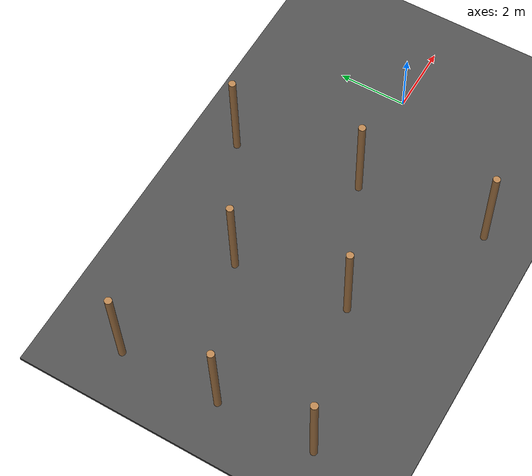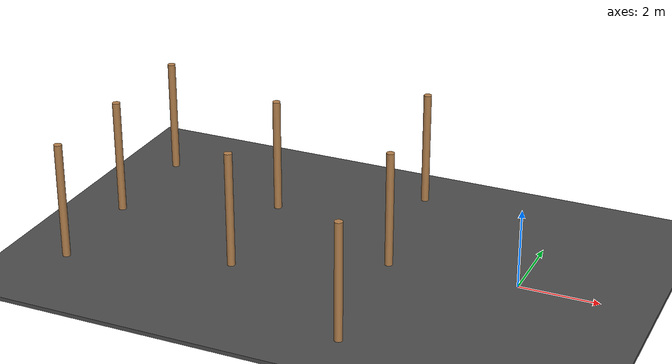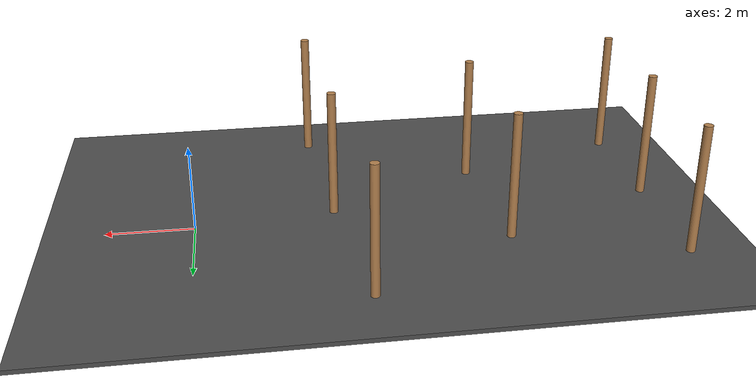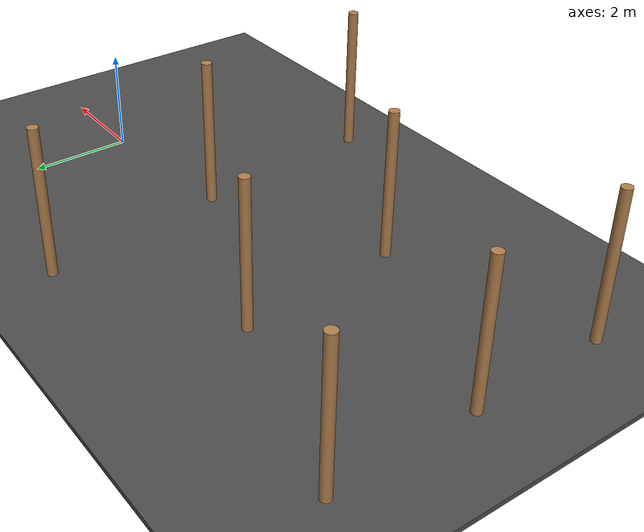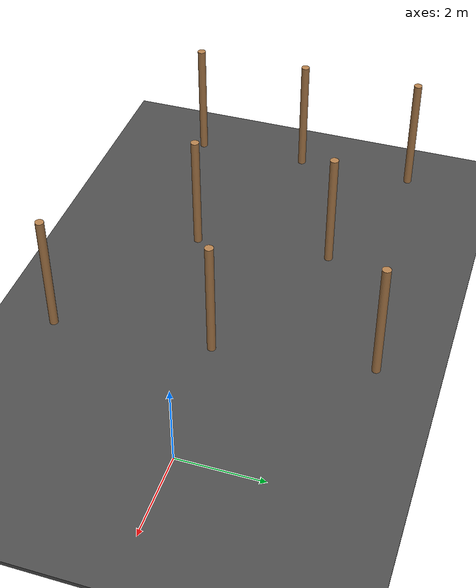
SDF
<sdf version="1.7">
 <world name="default">
  <model name="asphalt_plane">
   <pose>-0.054783 -0.070898 0 0 -0 0</pose>
   <static>1</static>
   <link name="link">
    <collision name="collision"><geometry><box><size>42.4866 44.6464 0.1</size></box></geometry></collision>
    <visual name="visual">
     <cast_shadows>0</cast_shadows>
     <geometry><box><size>42.4866 44.6464 0.1</size></box></geometry>
     <material>
      <script>
       <uri>model://asphalt_plane/materials/scripts</uri>
       <uri>model://asphalt_plane/materials/textures</uri>
       <name>vrc/asphalt</name>
      </script>
     </material>
    </visual>
   </link>
  </model>
  <model name="wooden_cylinder1_clone_1">
   <pose>-10.642 2.62246 -6e-05 0 -0 0</pose>
   <link name="wooden_cylinder::link_0">
    <pose>0 0 1.5 0 -0 0</pose>
    <inertial>
     <mass>1</mass>
     <inertia><ixx>0.145833</ixx><ixy>0</ixy><ixz>0</ixz><iyy>0.145833</iyy><iyz>0</iyz><izz>0.125</izz></inertia>
    </inertial>
    <visual name="visual">
     <geometry><cylinder><radius>0.1</radius><length>3</length></cylinder></geometry>
     <material>
      <lighting>1</lighting>
      <script><uri>file://media/materials/scripts/gazebo.material</uri><name>Gazebo/Wood</name></script>
      <ambient>0.3 0.3 0.3 1</ambient>
      <diffuse>0.7 0.7 0.7 1</diffuse>
      <specular>0.01 0.01 0.01 1</specular>
      <emissive>0 0 0 1</emissive>
      <shader type="vertex"><normal_map>__default__</normal_map></shader>
     </material>
    </visual>
    <collision name="collision">
     <geometry><cylinder><radius>0.1</radius><length>3</length></cylinder></geometry>
     <surface>
      <friction>
       <ode><mu>1</mu><mu2>1</mu2><fdir1>0 0 0</fdir1><slip1>0</slip1><slip2>0</slip2></ode>
       <torsional>
        <coefficient>1</coefficient>
        <patch_radius>0</patch_radius>
        <surface_radius>0</surface_radius>
        <use_patch_radius>1</use_patch_radius>
        <ode><slip>0</slip></ode>
       </torsional>
      </friction>
      <bounce><restitution_coefficient>0</restitution_coefficient><threshold>1e+06</threshold></bounce>
      <contact>
       <collide_without_contact>0</collide_without_contact>
       <collide_without_contact_bitmask>1</collide_without_contact_bitmask>
       <collide_bitmask>1</collide_bitmask>
       <ode>
        <soft_cfm>0</soft_cfm>
        <soft_erp>0.2</soft_erp>
        <kp>1e+13</kp>
        <kd>1</kd>
        <max_vel>0.01</max_vel>
        <min_depth>0</min_depth>
       </ode>
       <bullet>
        <split_impulse>1</split_impulse>
        <split_impulse_penetration_threshold>-0.01</split_impulse_penetration_threshold>
        <soft_cfm>0</soft_cfm>
        <soft_erp>0.2</soft_erp>
        <kp>1e+13</kp>
        <kd>1</kd>
       </bullet>
      </contact>
     </surface>
    </collision>
   </link>
   <static>1</static>
  </model>
  <model name="wooden_cylinder1_clone_3">
   <pose>-10.5388 -3.0463 -0.00014 0 -0 0</pose>
   <link name="wooden_cylinder::link_0">
    <pose>0 0 1.5 0 -0 0</pose>
    <inertial>
     <mass>1</mass>
     <inertia><ixx>0.145833</ixx><ixy>0</ixy><ixz>0</ixz><iyy>0.145833</iyy><iyz>0</iyz><izz>0.125</izz></inertia>
    </inertial>
    <visual name="visual">
     <geometry><cylinder><radius>0.1</radius><length>3</length></cylinder></geometry>
     <material>
      <lighting>1</lighting>
      <script><uri>file://media/materials/scripts/gazebo.material</uri><name>Gazebo/Wood</name></script>
      <ambient>0.3 0.3 0.3 1</ambient>
      <diffuse>0.7 0.7 0.7 1</diffuse>
      <specular>0.01 0.01 0.01 1</specular>
      <emissive>0 0 0 1</emissive>
      <shader type="vertex"><normal_map>__default__</normal_map></shader>
     </material>
    </visual>
    <collision name="collision">
     <geometry><cylinder><radius>0.1</radius><length>3</length></cylinder></geometry>
     <surface>
      <friction>
       <ode><mu>1</mu><mu2>1</mu2><fdir1>0 0 0</fdir1><slip1>0</slip1><slip2>0</slip2></ode>
       <torsional>
        <coefficient>1</coefficient>
        <patch_radius>0</patch_radius>
        <surface_radius>0</surface_radius>
        <use_patch_radius>1</use_patch_radius>
        <ode><slip>0</slip></ode>
       </torsional>
      </friction>
      <bounce><restitution_coefficient>0</restitution_coefficient><threshold>1e+06</threshold></bounce>
      <contact>
       <collide_without_contact>0</collide_without_contact>
       <collide_without_contact_bitmask>1</collide_without_contact_bitmask>
       <collide_bitmask>1</collide_bitmask>
       <ode>
        <soft_cfm>0</soft_cfm>
        <soft_erp>0.2</soft_erp>
        <kp>1e+13</kp>
        <kd>1</kd>
        <max_vel>0.01</max_vel>
        <min_depth>0</min_depth>
       </ode>
       <bullet>
        <split_impulse>1</split_impulse>
        <split_impulse_penetration_threshold>-0.01</split_impulse_penetration_threshold>
        <soft_cfm>0</soft_cfm>
        <soft_erp>0.2</soft_erp>
        <kp>1e+13</kp>
        <kd>1</kd>
       </bullet>
      </contact>
     </surface>
    </collision>
   </link>
   <static>1</static>
  </model>
  <model name="wooden_cylinder1_clone_4">
   <pose>-10.6103 -0.27054 0.0001 0 -0 0</pose>
   <link name="wooden_cylinder::link_0">
    <pose>0 0 1.5 0 -0 0</pose>
    <inertial>
     <mass>1</mass>
     <inertia><ixx>0.145833</ixx><ixy>0</ixy><ixz>0</ixz><iyy>0.145833</iyy><iyz>0</iyz><izz>0.125</izz></inertia>
    </inertial>
    <visual name="visual">
     <geometry><cylinder><radius>0.1</radius><length>3</length></cylinder></geometry>
     <material>
      <lighting>1</lighting>
      <script><uri>file://media/materials/scripts/gazebo.material</uri><name>Gazebo/Wood</name></script>
      <ambient>0.3 0.3 0.3 1</ambient>
      <diffuse>0.7 0.7 0.7 1</diffuse>
      <specular>0.01 0.01 0.01 1</specular>
      <emissive>0 0 0 1</emissive>
      <shader type="vertex"><normal_map>__default__</normal_map></shader>
     </material>
    </visual>
    <collision name="collision">
     <geometry><cylinder><radius>0.1</radius><length>3</length></cylinder></geometry>
     <surface>
      <friction>
       <ode><mu>1</mu><mu2>1</mu2><fdir1>0 0 0</fdir1><slip1>0</slip1><slip2>0</slip2></ode>
       <torsional>
        <coefficient>1</coefficient>
        <patch_radius>0</patch_radius>
        <surface_radius>0</surface_radius>
        <use_patch_radius>1</use_patch_radius>
        <ode><slip>0</slip></ode>
       </torsional>
      </friction>
      <bounce><restitution_coefficient>0</restitution_coefficient><threshold>1e+06</threshold></bounce>
      <contact>
       <collide_without_contact>0</collide_without_contact>
       <collide_without_contact_bitmask>1</collide_without_contact_bitmask>
       <collide_bitmask>1</collide_bitmask>
       <ode>
        <soft_cfm>0</soft_cfm>
        <soft_erp>0.2</soft_erp>
        <kp>1e+13</kp>
        <kd>1</kd>
        <max_vel>0.01</max_vel>
        <min_depth>0</min_depth>
       </ode>
       <bullet>
        <split_impulse>1</split_impulse>
        <split_impulse_penetration_threshold>-0.01</split_impulse_penetration_threshold>
        <soft_cfm>0</soft_cfm>
        <soft_erp>0.2</soft_erp>
        <kp>1e+13</kp>
        <kd>1</kd>
       </bullet>
      </contact>
     </surface>
    </collision>
   </link>
   <static>1</static>
  </model>
  <model name="wooden_cylinder1_clone_5">
   <pose>-6.96669 1.43108 5e-05 0 -0 0</pose>
   <link name="wooden_cylinder::link_0">
    <pose>0 0 1.5 0 -0 0</pose>
    <inertial>
     <mass>1</mass>
     <inertia><ixx>0.145833</ixx><ixy>0</ixy><ixz>0</ixz><iyy>0.145833</iyy><iyz>0</iyz><izz>0.125</izz></inertia>
    </inertial>
    <visual name="visual">
     <geometry><cylinder><radius>0.1</radius><length>3</length></cylinder></geometry>
     <material>
      <lighting>1</lighting>
      <script><uri>file://media/materials/scripts/gazebo.material</uri><name>Gazebo/Wood</name></script>
      <ambient>0.3 0.3 0.3 1</ambient>
      <diffuse>0.7 0.7 0.7 1</diffuse>
      <specular>0.01 0.01 0.01 1</specular>
      <emissive>0 0 0 1</emissive>
      <shader type="vertex"><normal_map>__default__</normal_map></shader>
     </material>
    </visual>
    <collision name="collision">
     <geometry><cylinder><radius>0.1</radius><length>3</length></cylinder></geometry>
     <surface>
      <friction>
       <ode><mu>1</mu><mu2>1</mu2><fdir1>0 0 0</fdir1><slip1>0</slip1><slip2>0</slip2></ode>
       <torsional>
        <coefficient>1</coefficient>
        <patch_radius>0</patch_radius>
        <surface_radius>0</surface_radius>
        <use_patch_radius>1</use_patch_radius>
        <ode><slip>0</slip></ode>
       </torsional>
      </friction>
      <bounce><restitution_coefficient>0</restitution_coefficient><threshold>1e+06</threshold></bounce>
      <contact>
       <collide_without_contact>0</collide_without_contact>
       <collide_without_contact_bitmask>1</collide_without_contact_bitmask>
       <collide_bitmask>1</collide_bitmask>
       <ode>
        <soft_cfm>0</soft_cfm>
        <soft_erp>0.2</soft_erp>
        <kp>1e+13</kp>
        <kd>1</kd>
        <max_vel>0.01</max_vel>
        <min_depth>0</min_depth>
       </ode>
       <bullet>
        <split_impulse>1</split_impulse>
        <split_impulse_penetration_threshold>-0.01</split_impulse_penetration_threshold>
        <soft_cfm>0</soft_cfm>
        <soft_erp>0.2</soft_erp>
        <kp>1e+13</kp>
        <kd>1</kd>
       </bullet>
      </contact>
     </surface>
    </collision>
   </link>
   <static>1</static>
  </model>
  <model name="wooden_cylinder1_clone_8">
   <pose>-6.64365 -1.83606 0 0 -0 0</pose>
   <link name="wooden_cylinder::link_0">
    <pose>0 0 1.5 0 -0 0</pose>
    <inertial>
     <mass>1</mass>
     <inertia><ixx>0.145833</ixx><ixy>0</ixy><ixz>0</ixz><iyy>0.145833</iyy><iyz>0</iyz><izz>0.125</izz></inertia>
    </inertial>
    <visual name="visual">
     <geometry><cylinder><radius>0.1</radius><length>3</length></cylinder></geometry>
     <material>
      <lighting>1</lighting>
      <script><uri>file://media/materials/scripts/gazebo.material</uri><name>Gazebo/Wood</name></script>
      <ambient>0.3 0.3 0.3 1</ambient>
      <diffuse>0.7 0.7 0.7 1</diffuse>
      <specular>0.01 0.01 0.01 1</specular>
      <emissive>0 0 0 1</emissive>
      <shader type="vertex"><normal_map>__default__</normal_map></shader>
     </material>
    </visual>
    <collision name="collision">
     <geometry><cylinder><radius>0.1</radius><length>3</length></cylinder></geometry>
     <surface>
      <friction>
       <ode><mu>1</mu><mu2>1</mu2><fdir1>0 0 0</fdir1><slip1>0</slip1><slip2>0</slip2></ode>
       <torsional>
        <coefficient>1</coefficient>
        <patch_radius>0</patch_radius>
        <surface_radius>0</surface_radius>
        <use_patch_radius>1</use_patch_radius>
        <ode><slip>0</slip></ode>
       </torsional>
      </friction>
      <bounce><restitution_coefficient>0</restitution_coefficient><threshold>1e+06</threshold></bounce>
      <contact>
       <collide_without_contact>0</collide_without_contact>
       <collide_without_contact_bitmask>1</collide_without_contact_bitmask>
       <collide_bitmask>1</collide_bitmask>
       <ode>
        <soft_cfm>0</soft_cfm>
        <soft_erp>0.2</soft_erp>
        <kp>1e+13</kp>
        <kd>1</kd>
        <max_vel>0.01</max_vel>
        <min_depth>0</min_depth>
       </ode>
       <bullet>
        <split_impulse>1</split_impulse>
        <split_impulse_penetration_threshold>-0.01</split_impulse_penetration_threshold>
        <soft_cfm>0</soft_cfm>
        <soft_erp>0.2</soft_erp>
        <kp>1e+13</kp>
        <kd>1</kd>
       </bullet>
      </contact>
     </surface>
    </collision>
   </link>
   <static>1</static>
  </model>
  <model name="wooden_cylinder1_clone_9">
   <pose>-3.17556 -0.278555 5e-05 0 -0 0</pose>
   <link name="wooden_cylinder::link_0">
    <pose>0 0 1.5 0 -0 0</pose>
    <inertial>
     <mass>1</mass>
     <inertia><ixx>0.145833</ixx><ixy>0</ixy><ixz>0</ixz><iyy>0.145833</iyy><iyz>0</iyz><izz>0.125</izz></inertia>
    </inertial>
    <visual name="visual">
     <geometry><cylinder><radius>0.1</radius><length>3</length></cylinder></geometry>
     <material>
      <lighting>1</lighting>
      <script><uri>file://media/materials/scripts/gazebo.material</uri><name>Gazebo/Wood</name></script>
      <ambient>0.3 0.3 0.3 1</ambient>
      <diffuse>0.7 0.7 0.7 1</diffuse>
      <specular>0.01 0.01 0.01 1</specular>
      <emissive>0 0 0 1</emissive>
      <shader type="vertex"><normal_map>__default__</normal_map></shader>
     </material>
    </visual>
    <collision name="collision">
     <geometry><cylinder><radius>0.1</radius><length>3</length></cylinder></geometry>
     <surface>
      <friction>
       <ode><mu>1</mu><mu2>1</mu2><fdir1>0 0 0</fdir1><slip1>0</slip1><slip2>0</slip2></ode>
       <torsional>
        <coefficient>1</coefficient>
        <patch_radius>0</patch_radius>
        <surface_radius>0</surface_radius>
        <use_patch_radius>1</use_patch_radius>
        <ode><slip>0</slip></ode>
       </torsional>
      </friction>
      <bounce><restitution_coefficient>0</restitution_coefficient><threshold>1e+06</threshold></bounce>
      <contact>
       <collide_without_contact>0</collide_without_contact>
       <collide_without_contact_bitmask>1</collide_without_contact_bitmask>
       <collide_bitmask>1</collide_bitmask>
       <ode>
        <soft_cfm>0</soft_cfm>
        <soft_erp>0.2</soft_erp>
        <kp>1e+13</kp>
        <kd>1</kd>
        <max_vel>0.01</max_vel>
        <min_depth>0</min_depth>
       </ode>
       <bullet>
        <split_impulse>1</split_impulse>
        <split_impulse_penetration_threshold>-0.01</split_impulse_penetration_threshold>
        <soft_cfm>0</soft_cfm>
        <soft_erp>0.2</soft_erp>
        <kp>1e+13</kp>
        <kd>1</kd>
       </bullet>
      </contact>
     </surface>
    </collision>
   </link>
   <static>1</static>
  </model>
  <model name="wooden_cylinder1_clone_22">
   <pose>-2.86149 -4 -3e-05 0 -0 0</pose>
   <link name="wooden_cylinder::link_0">
    <pose>0 0 1.5 0 -0 0</pose>
    <inertial>
     <mass>1</mass>
     <inertia><ixx>0.145833</ixx><ixy>0</ixy><ixz>0</ixz><iyy>0.145833</iyy><iyz>0</iyz><izz>0.125</izz></inertia>
    </inertial>
    <visual name="visual">
     <geometry><cylinder><radius>0.1</radius><length>3</length></cylinder></geometry>
     <material>
      <lighting>1</lighting>
      <script><uri>file://media/materials/scripts/gazebo.material</uri><name>Gazebo/Wood</name></script>
      <ambient>0.3 0.3 0.3 1</ambient>
      <diffuse>0.7 0.7 0.7 1</diffuse>
      <specular>0.01 0.01 0.01 1</specular>
      <emissive>0 0 0 1</emissive>
      <shader type="vertex"><normal_map>__default__</normal_map></shader>
     </material>
    </visual>
    <collision name="collision">
     <geometry><cylinder><radius>0.1</radius><length>3</length></cylinder></geometry>
     <surface>
      <friction>
       <ode><mu>1</mu><mu2>1</mu2><fdir1>0 0 0</fdir1><slip1>0</slip1><slip2>0</slip2></ode>
       <torsional>
        <coefficient>1</coefficient>
        <patch_radius>0</patch_radius>
        <surface_radius>0</surface_radius>
        <use_patch_radius>1</use_patch_radius>
        <ode><slip>0</slip></ode>
       </torsional>
      </friction>
      <bounce><restitution_coefficient>0</restitution_coefficient><threshold>1e+06</threshold></bounce>
      <contact>
       <collide_without_contact>0</collide_without_contact>
       <collide_without_contact_bitmask>1</collide_without_contact_bitmask>
       <collide_bitmask>1</collide_bitmask>
       <ode>
        <soft_cfm>0</soft_cfm>
        <soft_erp>0.2</soft_erp>
        <kp>1e+13</kp>
        <kd>1</kd>
        <max_vel>0.01</max_vel>
        <min_depth>0</min_depth>
       </ode>
       <bullet>
        <split_impulse>1</split_impulse>
        <split_impulse_penetration_threshold>-0.01</split_impulse_penetration_threshold>
        <soft_cfm>0</soft_cfm>
        <soft_erp>0.2</soft_erp>
        <kp>1e+13</kp>
        <kd>1</kd>
       </bullet>
      </contact>
     </surface>
    </collision>
   </link>
   <static>1</static>
  </model>
  <model name="wooden_cylinder1_clone_27">
   <pose>-3.64792 3.38842 4e-05 0 -0 0</pose>
   <link name="wooden_cylinder::link_0">
    <pose>0 0 1.5 0 -0 0</pose>
    <inertial>
     <mass>1</mass>
     <inertia><ixx>0.145833</ixx><ixy>0</ixy><ixz>0</ixz><iyy>0.145833</iyy><iyz>0</iyz><izz>0.125</izz></inertia>
    </inertial>
    <visual name="visual">
     <geometry><cylinder><radius>0.1</radius><length>3</length></cylinder></geometry>
     <material>
      <lighting>1</lighting>
      <script><uri>file://media/materials/scripts/gazebo.material</uri><name>Gazebo/Wood</name></script>
      <ambient>0.3 0.3 0.3 1</ambient>
      <diffuse>0.7 0.7 0.7 1</diffuse>
      <specular>0.01 0.01 0.01 1</specular>
      <emissive>0 0 0 1</emissive>
      <shader type="vertex"><normal_map>__default__</normal_map></shader>
     </material>
    </visual>
    <collision name="collision">
     <geometry><cylinder><radius>0.1</radius><length>3</length></cylinder></geometry>
     <surface>
      <friction>
       <ode><mu>1</mu><mu2>1</mu2><fdir1>0 0 0</fdir1><slip1>0</slip1><slip2>0</slip2></ode>
       <torsional>
        <coefficient>1</coefficient>
        <patch_radius>0</patch_radius>
        <surface_radius>0</surface_radius>
        <use_patch_radius>1</use_patch_radius>
        <ode><slip>0</slip></ode>
       </torsional>
      </friction>
      <bounce><restitution_coefficient>0</restitution_coefficient><threshold>1e+06</threshold></bounce>
      <contact>
       <collide_without_contact>0</collide_without_contact>
       <collide_without_contact_bitmask>1</collide_without_contact_bitmask>
       <collide_bitmask>1</collide_bitmask>
       <ode>
        <soft_cfm>0</soft_cfm>
        <soft_erp>0.2</soft_erp>
        <kp>1e+13</kp>
        <kd>1</kd>
        <max_vel>0.01</max_vel>
        <min_depth>0</min_depth>
       </ode>
       <bullet>
        <split_impulse>1</split_impulse>
        <split_impulse_penetration_threshold>-0.01</split_impulse_penetration_threshold>
        <soft_cfm>0</soft_cfm>
        <soft_erp>0.2</soft_erp>
        <kp>1e+13</kp>
        <kd>1</kd>
       </bullet>
      </contact>
     </surface>
    </collision>
   </link>
   <static>1</static>
  </model>
 </world>
</sdf>
